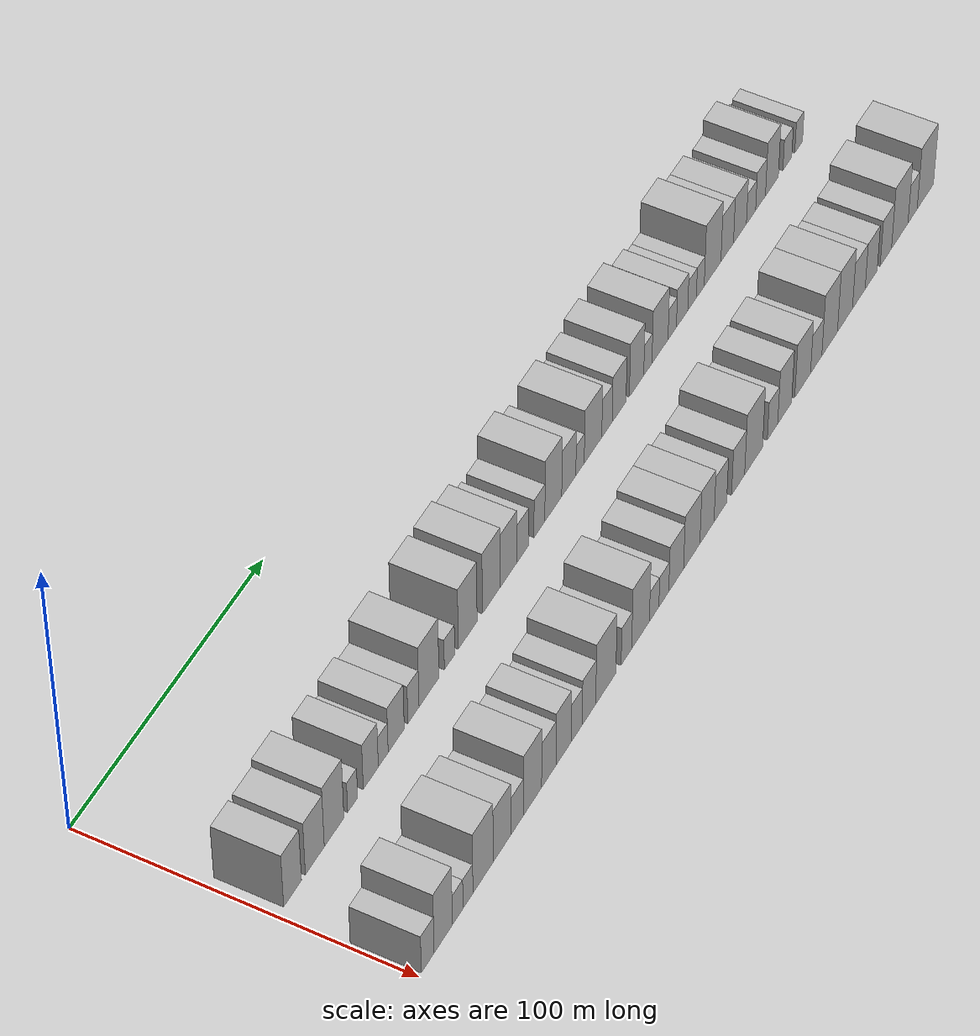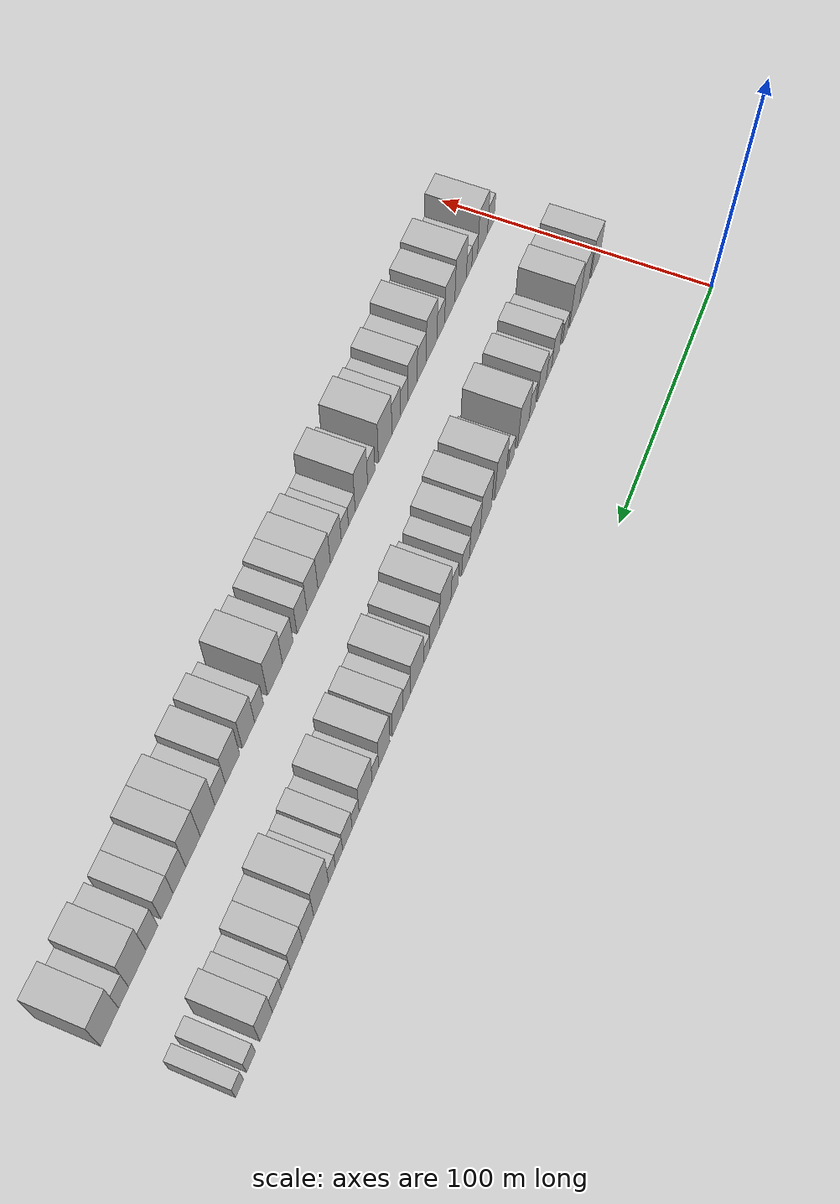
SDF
<sdf version="1.6">
 <world name="default">
  <model name="building_37">
   <static>1</static>
   <pose>50.0000 7.9456 0 0.000000 0.000000 0.000000</pose>
   <link name="link">
    <pose>0 0 10.50 0 0 0</pose>
    <collision name="collision"><geometry><box><size>20.0000 9.1939 21.0000</size></box></geometry></collision>
    <visual name="visual">
     <cast_shadows>0</cast_shadows>
     <geometry><box><size>20.0000 9.1939 21.0000</size></box></geometry>
     <material>
      <script>
       <uri>model://HANNAS_wall/materials/scripts</uri>
       <uri>model://HANNAS_wall/materials/textures</uri>
       <name>vrc/HANNAS_wall</name>
      </script>
     </material>
    </visual>
   </link>
  </model>
  <model name="building_38">
   <static>1</static>
   <pose>50.0000 19.4693 0 0.000000 0.000000 0.000000</pose>
   <link name="link">
    <pose>0 0 10.50 0 0 0</pose>
    <collision name="collision"><geometry><box><size>20.0000 9.8533 21.0000</size></box></geometry></collision>
    <visual name="visual">
     <cast_shadows>0</cast_shadows>
     <geometry><box><size>20.0000 9.8533 21.0000</size></box></geometry>
     <material>
      <script>
       <uri>model://HANNAS_wall/materials/scripts</uri>
       <uri>model://HANNAS_wall/materials/textures</uri>
       <name>vrc/HANNAS_wall</name>
      </script>
     </material>
    </visual>
   </link>
  </model>
  <model name="building_39">
   <static>1</static>
   <pose>50.0000 29.5468 0 0.000000 0.000000 0.000000</pose>
   <link name="link">
    <pose>0 0 12.00 0 0 0</pose>
    <collision name="collision"><geometry><box><size>20.0000 10.3018 24.0000</size></box></geometry></collision>
    <visual name="visual">
     <cast_shadows>0</cast_shadows>
     <geometry><box><size>20.0000 10.3018 24.0000</size></box></geometry>
     <material>
      <script>
       <uri>model://HANNAS_wall/materials/scripts</uri>
       <uri>model://HANNAS_wall/materials/textures</uri>
       <name>vrc/HANNAS_wall</name>
      </script>
     </material>
    </visual>
   </link>
  </model>
  <model name="building_40">
   <static>1</static>
   <pose>50.0000 39.3319 0 0.000000 0.000000 0.000000</pose>
   <link name="link">
    <pose>0 0 6.00 0 0 0</pose>
    <collision name="collision"><geometry><box><size>20.0000 5.2682 12.0000</size></box></geometry></collision>
    <visual name="visual">
     <cast_shadows>0</cast_shadows>
     <geometry><box><size>20.0000 5.2682 12.0000</size></box></geometry>
     <material>
      <script>
       <uri>model://HANNAS_wall/materials/scripts</uri>
       <uri>model://HANNAS_wall/materials/textures</uri>
       <name>vrc/HANNAS_wall</name>
      </script>
     </material>
    </visual>
   </link>
  </model>
  <model name="building_41">
   <static>1</static>
   <pose>50.0000 48.9914 0 0.000000 0.000000 0.000000</pose>
   <link name="link">
    <pose>0 0 9.00 0 0 0</pose>
    <collision name="collision"><geometry><box><size>20.0000 8.0509 18.0000</size></box></geometry></collision>
    <visual name="visual">
     <cast_shadows>0</cast_shadows>
     <geometry><box><size>20.0000 8.0509 18.0000</size></box></geometry>
     <material>
      <script>
       <uri>model://HANNAS_wall/materials/scripts</uri>
       <uri>model://HANNAS_wall/materials/textures</uri>
       <name>vrc/HANNAS_wall</name>
      </script>
     </material>
    </visual>
   </link>
  </model>
  <model name="building_42">
   <static>1</static>
   <pose>50.0000 55.6602 0 0.000000 0.000000 0.000000</pose>
   <link name="link">
    <pose>0 0 6.00 0 0 0</pose>
    <collision name="collision"><geometry><box><size>20.0000 5.2866 12.0000</size></box></geometry></collision>
    <visual name="visual">
     <cast_shadows>0</cast_shadows>
     <geometry><box><size>20.0000 5.2866 12.0000</size></box></geometry>
     <material>
      <script>
       <uri>model://HANNAS_wall/materials/scripts</uri>
       <uri>model://HANNAS_wall/materials/textures</uri>
       <name>vrc/HANNAS_wall</name>
      </script>
     </material>
    </visual>
   </link>
  </model>
  <model name="building_43">
   <static>1</static>
   <pose>50.0000 62.6468 0 0.000000 0.000000 0.000000</pose>
   <link name="link">
    <pose>0 0 9.00 0 0 0</pose>
    <collision name="collision"><geometry><box><size>20.0000 8.6865 18.0000</size></box></geometry></collision>
    <visual name="visual">
     <cast_shadows>0</cast_shadows>
     <geometry><box><size>20.0000 8.6865 18.0000</size></box></geometry>
     <material>
      <script>
       <uri>model://HANNAS_wall/materials/scripts</uri>
       <uri>model://HANNAS_wall/materials/textures</uri>
       <name>vrc/HANNAS_wall</name>
      </script>
     </material>
    </visual>
   </link>
  </model>
  <model name="building_44">
   <static>1</static>
   <pose>50.0000 72.0212 0 0.000000 0.000000 0.000000</pose>
   <link name="link">
    <pose>0 0 7.50 0 0 0</pose>
    <collision name="collision"><geometry><box><size>20.0000 6.0623 15.0000</size></box></geometry></collision>
    <visual name="visual">
     <cast_shadows>0</cast_shadows>
     <geometry><box><size>20.0000 6.0623 15.0000</size></box></geometry>
     <material>
      <script>
       <uri>model://HANNAS_wall/materials/scripts</uri>
       <uri>model://HANNAS_wall/materials/textures</uri>
       <name>vrc/HANNAS_wall</name>
      </script>
     </material>
    </visual>
   </link>
  </model>
  <model name="building_45">
   <static>1</static>
   <pose>50.0000 80.5206 0 0.000000 0.000000 0.000000</pose>
   <link name="link">
    <pose>0 0 12.00 0 0 0</pose>
    <collision name="collision"><geometry><box><size>20.0000 10.9365 24.0000</size></box></geometry></collision>
    <visual name="visual">
     <cast_shadows>0</cast_shadows>
     <geometry><box><size>20.0000 10.9365 24.0000</size></box></geometry>
     <material>
      <script>
       <uri>model://HANNAS_wall/materials/scripts</uri>
       <uri>model://HANNAS_wall/materials/textures</uri>
       <name>vrc/HANNAS_wall</name>
      </script>
     </material>
    </visual>
   </link>
  </model>
  <model name="building_46">
   <static>1</static>
   <pose>50.0000 91.8539 0 0.000000 0.000000 0.000000</pose>
   <link name="link">
    <pose>0 0 6.00 0 0 0</pose>
    <collision name="collision"><geometry><box><size>20.0000 5.7302 12.0000</size></box></geometry></collision>
    <visual name="visual">
     <cast_shadows>0</cast_shadows>
     <geometry><box><size>20.0000 5.7302 12.0000</size></box></geometry>
     <material>
      <script>
       <uri>model://HANNAS_wall/materials/scripts</uri>
       <uri>model://HANNAS_wall/materials/textures</uri>
       <name>vrc/HANNAS_wall</name>
      </script>
     </material>
    </visual>
   </link>
  </model>
  <model name="building_47">
   <static>1</static>
   <pose>50.0000 101.9800 0 0.000000 0.000000 0.000000</pose>
   <link name="link">
    <pose>0 0 12.00 0 0 0</pose>
    <collision name="collision"><geometry><box><size>20.0000 10.5220 24.0000</size></box></geometry></collision>
    <visual name="visual">
     <cast_shadows>0</cast_shadows>
     <geometry><box><size>20.0000 10.5220 24.0000</size></box></geometry>
     <material>
      <script>
       <uri>model://HANNAS_wall/materials/scripts</uri>
       <uri>model://HANNAS_wall/materials/textures</uri>
       <name>vrc/HANNAS_wall</name>
      </script>
     </material>
    </visual>
   </link>
  </model>
  <model name="building_48">
   <static>1</static>
   <pose>50.0000 115.3014 0 0.000000 0.000000 0.000000</pose>
   <link name="link">
    <pose>0 0 12.00 0 0 0</pose>
    <collision name="collision"><geometry><box><size>20.0000 10.1207 24.0000</size></box></geometry></collision>
    <visual name="visual">
     <cast_shadows>0</cast_shadows>
     <geometry><box><size>20.0000 10.1207 24.0000</size></box></geometry>
     <material>
      <script>
       <uri>model://HANNAS_wall/materials/scripts</uri>
       <uri>model://HANNAS_wall/materials/textures</uri>
       <name>vrc/HANNAS_wall</name>
      </script>
     </material>
    </visual>
   </link>
  </model>
  <model name="building_49">
   <static>1</static>
   <pose>50.0000 125.1056 0 0.000000 0.000000 0.000000</pose>
   <link name="link">
    <pose>0 0 10.50 0 0 0</pose>
    <collision name="collision"><geometry><box><size>20.0000 9.4878 21.0000</size></box></geometry></collision>
    <visual name="visual">
     <cast_shadows>0</cast_shadows>
     <geometry><box><size>20.0000 9.4878 21.0000</size></box></geometry>
     <material>
      <script>
       <uri>model://HANNAS_wall/materials/scripts</uri>
       <uri>model://HANNAS_wall/materials/textures</uri>
       <name>vrc/HANNAS_wall</name>
      </script>
     </material>
    </visual>
   </link>
  </model>
  <model name="building_50">
   <static>1</static>
   <pose>50.0000 133.2721 0 0.000000 0.000000 0.000000</pose>
   <link name="link">
    <pose>0 0 7.50 0 0 0</pose>
    <collision name="collision"><geometry><box><size>20.0000 6.8451 15.0000</size></box></geometry></collision>
    <visual name="visual">
     <cast_shadows>0</cast_shadows>
     <geometry><box><size>20.0000 6.8451 15.0000</size></box></geometry>
     <material>
      <script>
       <uri>model://HANNAS_wall/materials/scripts</uri>
       <uri>model://HANNAS_wall/materials/textures</uri>
       <name>vrc/HANNAS_wall</name>
      </script>
     </material>
    </visual>
   </link>
  </model>
  <model name="building_51">
   <static>1</static>
   <pose>50.0000 142.8507 0 0.000000 0.000000 0.000000</pose>
   <link name="link">
    <pose>0 0 7.50 0 0 0</pose>
    <collision name="collision"><geometry><box><size>20.0000 6.3121 15.0000</size></box></geometry></collision>
    <visual name="visual">
     <cast_shadows>0</cast_shadows>
     <geometry><box><size>20.0000 6.3121 15.0000</size></box></geometry>
     <material>
      <script>
       <uri>model://HANNAS_wall/materials/scripts</uri>
       <uri>model://HANNAS_wall/materials/textures</uri>
       <name>vrc/HANNAS_wall</name>
      </script>
     </material>
    </visual>
   </link>
  </model>
  <model name="building_52">
   <static>1</static>
   <pose>50.0000 150.9185 0 0.000000 0.000000 0.000000</pose>
   <link name="link">
    <pose>0 0 12.00 0 0 0</pose>
    <collision name="collision"><geometry><box><size>20.0000 9.8236 24.0000</size></box></geometry></collision>
    <visual name="visual">
     <cast_shadows>0</cast_shadows>
     <geometry><box><size>20.0000 9.8236 24.0000</size></box></geometry>
     <material>
      <script>
       <uri>model://HANNAS_wall/materials/scripts</uri>
       <uri>model://HANNAS_wall/materials/textures</uri>
       <name>vrc/HANNAS_wall</name>
      </script>
     </material>
    </visual>
   </link>
  </model>
  <model name="building_53">
   <static>1</static>
   <pose>50.0000 159.9945 0 0.000000 0.000000 0.000000</pose>
   <link name="link">
    <pose>0 0 9.00 0 0 0</pose>
    <collision name="collision"><geometry><box><size>20.0000 8.3284 18.0000</size></box></geometry></collision>
    <visual name="visual">
     <cast_shadows>0</cast_shadows>
     <geometry><box><size>20.0000 8.3284 18.0000</size></box></geometry>
     <material>
      <script>
       <uri>model://HANNAS_wall/materials/scripts</uri>
       <uri>model://HANNAS_wall/materials/textures</uri>
       <name>vrc/HANNAS_wall</name>
      </script>
     </material>
    </visual>
   </link>
  </model>
  <model name="building_54">
   <static>1</static>
   <pose>50.0000 166.6386 0 0.000000 0.000000 0.000000</pose>
   <link name="link">
    <pose>0 0 6.00 0 0 0</pose>
    <collision name="collision"><geometry><box><size>20.0000 4.9598 12.0000</size></box></geometry></collision>
    <visual name="visual">
     <cast_shadows>0</cast_shadows>
     <geometry><box><size>20.0000 4.9598 12.0000</size></box></geometry>
     <material>
      <script>
       <uri>model://HANNAS_wall/materials/scripts</uri>
       <uri>model://HANNAS_wall/materials/textures</uri>
       <name>vrc/HANNAS_wall</name>
      </script>
     </material>
    </visual>
   </link>
  </model>
  <model name="building_55">
   <static>1</static>
   <pose>50.0000 174.3444 0 0.000000 0.000000 0.000000</pose>
   <link name="link">
    <pose>0 0 10.50 0 0 0</pose>
    <collision name="collision"><geometry><box><size>20.0000 10.4516 21.0000</size></box></geometry></collision>
    <visual name="visual">
     <cast_shadows>0</cast_shadows>
     <geometry><box><size>20.0000 10.4516 21.0000</size></box></geometry>
     <material>
      <script>
       <uri>model://HANNAS_wall/materials/scripts</uri>
       <uri>model://HANNAS_wall/materials/textures</uri>
       <name>vrc/HANNAS_wall</name>
      </script>
     </material>
    </visual>
   </link>
  </model>
  <model name="building_56">
   <static>1</static>
   <pose>50.0000 182.6839 0 0.000000 0.000000 0.000000</pose>
   <link name="link">
    <pose>0 0 7.50 0 0 0</pose>
    <collision name="collision"><geometry><box><size>20.0000 6.2274 15.0000</size></box></geometry></collision>
    <visual name="visual">
     <cast_shadows>0</cast_shadows>
     <geometry><box><size>20.0000 6.2274 15.0000</size></box></geometry>
     <material>
      <script>
       <uri>model://HANNAS_wall/materials/scripts</uri>
       <uri>model://HANNAS_wall/materials/textures</uri>
       <name>vrc/HANNAS_wall</name>
      </script>
     </material>
    </visual>
   </link>
  </model>
  <model name="building_57">
   <static>1</static>
   <pose>50.0000 189.9782 0 0.000000 0.000000 0.000000</pose>
   <link name="link">
    <pose>0 0 9.00 0 0 0</pose>
    <collision name="collision"><geometry><box><size>20.0000 8.3613 18.0000</size></box></geometry></collision>
    <visual name="visual">
     <cast_shadows>0</cast_shadows>
     <geometry><box><size>20.0000 8.3613 18.0000</size></box></geometry>
     <material>
      <script>
       <uri>model://HANNAS_wall/materials/scripts</uri>
       <uri>model://HANNAS_wall/materials/textures</uri>
       <name>vrc/HANNAS_wall</name>
      </script>
     </material>
    </visual>
   </link>
  </model>
  <model name="building_58">
   <static>1</static>
   <pose>50.0000 200.5402 0 0.000000 0.000000 0.000000</pose>
   <link name="link">
    <pose>0 0 10.50 0 0 0</pose>
    <collision name="collision"><geometry><box><size>20.0000 8.7629 21.0000</size></box></geometry></collision>
    <visual name="visual">
     <cast_shadows>0</cast_shadows>
     <geometry><box><size>20.0000 8.7629 21.0000</size></box></geometry>
     <material>
      <script>
       <uri>model://HANNAS_wall/materials/scripts</uri>
       <uri>model://HANNAS_wall/materials/textures</uri>
       <name>vrc/HANNAS_wall</name>
      </script>
     </material>
    </visual>
   </link>
  </model>
  <model name="building_59">
   <static>1</static>
   <pose>50.0000 207.4315 0 0.000000 0.000000 0.000000</pose>
   <link name="link">
    <pose>0 0 6.00 0 0 0</pose>
    <collision name="collision"><geometry><box><size>20.0000 5.0197 12.0000</size></box></geometry></collision>
    <visual name="visual">
     <cast_shadows>0</cast_shadows>
     <geometry><box><size>20.0000 5.0197 12.0000</size></box></geometry>
     <material>
      <script>
       <uri>model://HANNAS_wall/materials/scripts</uri>
       <uri>model://HANNAS_wall/materials/textures</uri>
       <name>vrc/HANNAS_wall</name>
      </script>
     </material>
    </visual>
   </link>
  </model>
  <model name="building_60">
   <static>1</static>
   <pose>50.0000 214.8930 0 0.000000 0.000000 0.000000</pose>
   <link name="link">
    <pose>0 0 10.50 0 0 0</pose>
    <collision name="collision"><geometry><box><size>20.0000 9.9031 21.0000</size></box></geometry></collision>
    <visual name="visual">
     <cast_shadows>0</cast_shadows>
     <geometry><box><size>20.0000 9.9031 21.0000</size></box></geometry>
     <material>
      <script>
       <uri>model://HANNAS_wall/materials/scripts</uri>
       <uri>model://HANNAS_wall/materials/textures</uri>
       <name>vrc/HANNAS_wall</name>
      </script>
     </material>
    </visual>
   </link>
  </model>
  <model name="building_61">
   <static>1</static>
   <pose>50.0000 222.4428 0 0.000000 0.000000 0.000000</pose>
   <link name="link">
    <pose>0 0 6.00 0 0 0</pose>
    <collision name="collision"><geometry><box><size>20.0000 5.1965 12.0000</size></box></geometry></collision>
    <visual name="visual">
     <cast_shadows>0</cast_shadows>
     <geometry><box><size>20.0000 5.1965 12.0000</size></box></geometry>
     <material>
      <script>
       <uri>model://HANNAS_wall/materials/scripts</uri>
       <uri>model://HANNAS_wall/materials/textures</uri>
       <name>vrc/HANNAS_wall</name>
      </script>
     </material>
    </visual>
   </link>
  </model>
  <model name="building_62">
   <static>1</static>
   <pose>50.0000 228.5811 0 0.000000 0.000000 0.000000</pose>
   <link name="link">
    <pose>0 0 7.50 0 0 0</pose>
    <collision name="collision"><geometry><box><size>20.0000 7.0801 15.0000</size></box></geometry></collision>
    <visual name="visual">
     <cast_shadows>0</cast_shadows>
     <geometry><box><size>20.0000 7.0801 15.0000</size></box></geometry>
     <material>
      <script>
       <uri>model://HANNAS_wall/materials/scripts</uri>
       <uri>model://HANNAS_wall/materials/textures</uri>
       <name>vrc/HANNAS_wall</name>
      </script>
     </material>
    </visual>
   </link>
  </model>
  <model name="building_63">
   <static>1</static>
   <pose>50.0000 234.8005 0 0.000000 0.000000 0.000000</pose>
   <link name="link">
    <pose>0 0 6.00 0 0 0</pose>
    <collision name="collision"><geometry><box><size>20.0000 5.3588 12.0000</size></box></geometry></collision>
    <visual name="visual">
     <cast_shadows>0</cast_shadows>
     <geometry><box><size>20.0000 5.3588 12.0000</size></box></geometry>
     <material>
      <script>
       <uri>model://HANNAS_wall/materials/scripts</uri>
       <uri>model://HANNAS_wall/materials/textures</uri>
       <name>vrc/HANNAS_wall</name>
      </script>
     </material>
    </visual>
   </link>
  </model>
  <model name="building_64">
   <static>1</static>
   <pose>50.0000 239.9629 0 0.000000 0.000000 0.000000</pose>
   <link name="link">
    <pose>0 0 6.00 0 0 0</pose>
    <collision name="collision"><geometry><box><size>20.0000 4.9660 12.0000</size></box></geometry></collision>
    <visual name="visual">
     <cast_shadows>0</cast_shadows>
     <geometry><box><size>20.0000 4.9660 12.0000</size></box></geometry>
     <material>
      <script>
       <uri>model://HANNAS_wall/materials/scripts</uri>
       <uri>model://HANNAS_wall/materials/textures</uri>
       <name>vrc/HANNAS_wall</name>
      </script>
     </material>
    </visual>
   </link>
  </model>
  <model name="building_65">
   <static>1</static>
   <pose>50.0000 247.7345 0 0.000000 0.000000 0.000000</pose>
   <link name="link">
    <pose>0 0 12.00 0 0 0</pose>
    <collision name="collision"><geometry><box><size>20.0000 10.5771 24.0000</size></box></geometry></collision>
    <visual name="visual">
     <cast_shadows>0</cast_shadows>
     <geometry><box><size>20.0000 10.5771 24.0000</size></box></geometry>
     <material>
      <script>
       <uri>model://HANNAS_wall/materials/scripts</uri>
       <uri>model://HANNAS_wall/materials/textures</uri>
       <name>vrc/HANNAS_wall</name>
      </script>
     </material>
    </visual>
   </link>
  </model>
  <model name="building_66">
   <static>1</static>
   <pose>50.0000 257.0265 0 0.000000 0.000000 0.000000</pose>
   <link name="link">
    <pose>0 0 9.00 0 0 0</pose>
    <collision name="collision"><geometry><box><size>20.0000 8.0067 18.0000</size></box></geometry></collision>
    <visual name="visual">
     <cast_shadows>0</cast_shadows>
     <geometry><box><size>20.0000 8.0067 18.0000</size></box></geometry>
     <material>
      <script>
       <uri>model://HANNAS_wall/materials/scripts</uri>
       <uri>model://HANNAS_wall/materials/textures</uri>
       <name>vrc/HANNAS_wall</name>
      </script>
     </material>
    </visual>
   </link>
  </model>
  <model name="building_67">
   <static>1</static>
   <pose>50.0000 265.1868 0 0.000000 0.000000 0.000000</pose>
   <link name="link">
    <pose>0 0 9.00 0 0 0</pose>
    <collision name="collision"><geometry><box><size>20.0000 8.3139 18.0000</size></box></geometry></collision>
    <visual name="visual">
     <cast_shadows>0</cast_shadows>
     <geometry><box><size>20.0000 8.3139 18.0000</size></box></geometry>
     <material>
      <script>
       <uri>model://HANNAS_wall/materials/scripts</uri>
       <uri>model://HANNAS_wall/materials/textures</uri>
       <name>vrc/HANNAS_wall</name>
      </script>
     </material>
    </visual>
   </link>
  </model>
  <model name="building_68">
   <static>1</static>
   <pose>50.0000 272.3159 0 0.000000 0.000000 0.000000</pose>
   <link name="link">
    <pose>0 0 6.00 0 0 0</pose>
    <collision name="collision"><geometry><box><size>20.0000 5.9443 12.0000</size></box></geometry></collision>
    <visual name="visual">
     <cast_shadows>0</cast_shadows>
     <geometry><box><size>20.0000 5.9443 12.0000</size></box></geometry>
     <material>
      <script>
       <uri>model://HANNAS_wall/materials/scripts</uri>
       <uri>model://HANNAS_wall/materials/textures</uri>
       <name>vrc/HANNAS_wall</name>
      </script>
     </material>
    </visual>
   </link>
  </model>
  <model name="building_69">
   <static>1</static>
   <pose>50.0000 278.4816 0 0.000000 0.000000 0.000000</pose>
   <link name="link">
    <pose>0 0 7.50 0 0 0</pose>
    <collision name="collision"><geometry><box><size>20.0000 6.3872 15.0000</size></box></geometry></collision>
    <visual name="visual">
     <cast_shadows>0</cast_shadows>
     <geometry><box><size>20.0000 6.3872 15.0000</size></box></geometry>
     <material>
      <script>
       <uri>model://HANNAS_wall/materials/scripts</uri>
       <uri>model://HANNAS_wall/materials/textures</uri>
       <name>vrc/HANNAS_wall</name>
      </script>
     </material>
    </visual>
   </link>
  </model>
  <model name="building_70">
   <static>1</static>
   <pose>50.0000 285.8795 0 0.000000 0.000000 0.000000</pose>
   <link name="link">
    <pose>0 0 10.50 0 0 0</pose>
    <collision name="collision"><geometry><box><size>20.0000 8.4086 21.0000</size></box></geometry></collision>
    <visual name="visual">
     <cast_shadows>0</cast_shadows>
     <geometry><box><size>20.0000 8.4086 21.0000</size></box></geometry>
     <material>
      <script>
       <uri>model://HANNAS_wall/materials/scripts</uri>
       <uri>model://HANNAS_wall/materials/textures</uri>
       <name>vrc/HANNAS_wall</name>
      </script>
     </material>
    </visual>
   </link>
  </model>
  <model name="building_71">
   <static>1</static>
   <pose>50.0000 296.0022 0 0.000000 0.000000 0.000000</pose>
   <link name="link">
    <pose>0 0 6.00 0 0 0</pose>
    <collision name="collision"><geometry><box><size>20.0000 5.8367 12.0000</size></box></geometry></collision>
    <visual name="visual">
     <cast_shadows>0</cast_shadows>
     <geometry><box><size>20.0000 5.8367 12.0000</size></box></geometry>
     <material>
      <script>
       <uri>model://HANNAS_wall/materials/scripts</uri>
       <uri>model://HANNAS_wall/materials/textures</uri>
       <name>vrc/HANNAS_wall</name>
      </script>
     </material>
    </visual>
   </link>
  </model>
  <model name="building_72">
   <static>1</static>
   <pose>50.0000 303.4666 0 0.000000 0.000000 0.000000</pose>
   <link name="link">
    <pose>0 0 6.00 0 0 0</pose>
    <collision name="collision"><geometry><box><size>20.0000 5.0923 12.0000</size></box></geometry></collision>
    <visual name="visual">
     <cast_shadows>0</cast_shadows>
     <geometry><box><size>20.0000 5.0923 12.0000</size></box></geometry>
     <material>
      <script>
       <uri>model://HANNAS_wall/materials/scripts</uri>
       <uri>model://HANNAS_wall/materials/textures</uri>
       <name>vrc/HANNAS_wall</name>
      </script>
     </material>
    </visual>
   </link>
  </model>
  <model name="building_107">
   <static>1</static>
   <pose>90.0000 4.6792 0 0.000000 0.000000 0.000000</pose>
   <link name="link">
    <pose>0 0 7.50 0 0 0</pose>
    <collision name="collision"><geometry><box><size>20.0000 6.7157 15.0000</size></box></geometry></collision>
    <visual name="visual">
     <cast_shadows>0</cast_shadows>
     <geometry><box><size>20.0000 6.7157 15.0000</size></box></geometry>
     <material>
      <script>
       <uri>model://HANNAS_wall/materials/scripts</uri>
       <uri>model://HANNAS_wall/materials/textures</uri>
       <name>vrc/HANNAS_wall</name>
      </script>
     </material>
    </visual>
   </link>
  </model>
  <model name="building_108">
   <static>1</static>
   <pose>90.0000 12.8679 0 0.000000 0.000000 0.000000</pose>
   <link name="link">
    <pose>0 0 12.00 0 0 0</pose>
    <collision name="collision"><geometry><box><size>20.0000 9.6616 24.0000</size></box></geometry></collision>
    <visual name="visual">
     <cast_shadows>0</cast_shadows>
     <geometry><box><size>20.0000 9.6616 24.0000</size></box></geometry>
     <material>
      <script>
       <uri>model://HANNAS_wall/materials/scripts</uri>
       <uri>model://HANNAS_wall/materials/textures</uri>
       <name>vrc/HANNAS_wall</name>
      </script>
     </material>
    </visual>
   </link>
  </model>
  <model name="building_109">
   <static>1</static>
   <pose>90.0000 20.5508 0 0.000000 0.000000 0.000000</pose>
   <link name="link">
    <pose>0 0 6.00 0 0 0</pose>
    <collision name="collision"><geometry><box><size>20.0000 5.7042 12.0000</size></box></geometry></collision>
    <visual name="visual">
     <cast_shadows>0</cast_shadows>
     <geometry><box><size>20.0000 5.7042 12.0000</size></box></geometry>
     <material>
      <script>
       <uri>model://HANNAS_wall/materials/scripts</uri>
       <uri>model://HANNAS_wall/materials/textures</uri>
       <name>vrc/HANNAS_wall</name>
      </script>
     </material>
    </visual>
   </link>
  </model>
  <model name="building_110">
   <static>1</static>
   <pose>90.0000 26.0632 0 0.000000 0.000000 0.000000</pose>
   <link name="link">
    <pose>0 0 6.00 0 0 0</pose>
    <collision name="collision"><geometry><box><size>20.0000 5.3204 12.0000</size></box></geometry></collision>
    <visual name="visual">
     <cast_shadows>0</cast_shadows>
     <geometry><box><size>20.0000 5.3204 12.0000</size></box></geometry>
     <material>
      <script>
       <uri>model://HANNAS_wall/materials/scripts</uri>
       <uri>model://HANNAS_wall/materials/textures</uri>
       <name>vrc/HANNAS_wall</name>
      </script>
     </material>
    </visual>
   </link>
  </model>
  <model name="building_111">
   <static>1</static>
   <pose>90.0000 34.2066 0 0.000000 0.000000 0.000000</pose>
   <link name="link">
    <pose>0 0 12.00 0 0 0</pose>
    <collision name="collision"><geometry><box><size>20.0000 10.9665 24.0000</size></box></geometry></collision>
    <visual name="visual">
     <cast_shadows>0</cast_shadows>
     <geometry><box><size>20.0000 10.9665 24.0000</size></box></geometry>
     <material>
      <script>
       <uri>model://HANNAS_wall/materials/scripts</uri>
       <uri>model://HANNAS_wall/materials/textures</uri>
       <name>vrc/HANNAS_wall</name>
      </script>
     </material>
    </visual>
   </link>
  </model>
  <model name="building_112">
   <static>1</static>
   <pose>90.0000 44.4616 0 0.000000 0.000000 0.000000</pose>
   <link name="link">
    <pose>0 0 10.50 0 0 0</pose>
    <collision name="collision"><geometry><box><size>20.0000 9.5434 21.0000</size></box></geometry></collision>
    <visual name="visual">
     <cast_shadows>0</cast_shadows>
     <geometry><box><size>20.0000 9.5434 21.0000</size></box></geometry>
     <material>
      <script>
       <uri>model://HANNAS_wall/materials/scripts</uri>
       <uri>model://HANNAS_wall/materials/textures</uri>
       <name>vrc/HANNAS_wall</name>
      </script>
     </material>
    </visual>
   </link>
  </model>
  <model name="building_113">
   <static>1</static>
   <pose>90.0000 52.7765 0 0.000000 0.000000 0.000000</pose>
   <link name="link">
    <pose>0 0 7.50 0 0 0</pose>
    <collision name="collision"><geometry><box><size>20.0000 7.0864 15.0000</size></box></geometry></collision>
    <visual name="visual">
     <cast_shadows>0</cast_shadows>
     <geometry><box><size>20.0000 7.0864 15.0000</size></box></geometry>
     <material>
      <script>
       <uri>model://HANNAS_wall/materials/scripts</uri>
       <uri>model://HANNAS_wall/materials/textures</uri>
       <name>vrc/HANNAS_wall</name>
      </script>
     </material>
    </visual>
   </link>
  </model>
  <model name="building_114">
   <static>1</static>
   <pose>90.0000 61.2778 0 0.000000 0.000000 0.000000</pose>
   <link name="link">
    <pose>0 0 12.00 0 0 0</pose>
    <collision name="collision"><geometry><box><size>20.0000 9.9162 24.0000</size></box></geometry></collision>
    <visual name="visual">
     <cast_shadows>0</cast_shadows>
     <geometry><box><size>20.0000 9.9162 24.0000</size></box></geometry>
     <material>
      <script>
       <uri>model://HANNAS_wall/materials/scripts</uri>
       <uri>model://HANNAS_wall/materials/textures</uri>
       <name>vrc/HANNAS_wall</name>
      </script>
     </material>
    </visual>
   </link>
  </model>
  <model name="building_115">
   <static>1</static>
   <pose>90.0000 70.2592 0 0.000000 0.000000 0.000000</pose>
   <link name="link">
    <pose>0 0 9.00 0 0 0</pose>
    <collision name="collision"><geometry><box><size>20.0000 8.0465 18.0000</size></box></geometry></collision>
    <visual name="visual">
     <cast_shadows>0</cast_shadows>
     <geometry><box><size>20.0000 8.0465 18.0000</size></box></geometry>
     <material>
      <script>
       <uri>model://HANNAS_wall/materials/scripts</uri>
       <uri>model://HANNAS_wall/materials/textures</uri>
       <name>vrc/HANNAS_wall</name>
      </script>
     </material>
    </visual>
   </link>
  </model>
  <model name="building_116">
   <static>1</static>
   <pose>90.0000 78.5116 0 0.000000 0.000000 0.000000</pose>
   <link name="link">
    <pose>0 0 10.50 0 0 0</pose>
    <collision name="collision"><geometry><box><size>20.0000 8.4583 21.0000</size></box></geometry></collision>
    <visual name="visual">
     <cast_shadows>0</cast_shadows>
     <geometry><box><size>20.0000 8.4583 21.0000</size></box></geometry>
     <material>
      <script>
       <uri>model://HANNAS_wall/materials/scripts</uri>
       <uri>model://HANNAS_wall/materials/textures</uri>
       <name>vrc/HANNAS_wall</name>
      </script>
     </material>
    </visual>
   </link>
  </model>
  <model name="building_117">
   <static>1</static>
   <pose>90.0000 85.9025 0 0.000000 0.000000 0.000000</pose>
   <link name="link">
    <pose>0 0 7.50 0 0 0</pose>
    <collision name="collision"><geometry><box><size>20.0000 6.3236 15.0000</size></box></geometry></collision>
    <visual name="visual">
     <cast_shadows>0</cast_shadows>
     <geometry><box><size>20.0000 6.3236 15.0000</size></box></geometry>
     <material>
      <script>
       <uri>model://HANNAS_wall/materials/scripts</uri>
       <uri>model://HANNAS_wall/materials/textures</uri>
       <name>vrc/HANNAS_wall</name>
      </script>
     </material>
    </visual>
   </link>
  </model>
  <model name="building_118">
   <static>1</static>
   <pose>90.0000 92.9054 0 0.000000 0.000000 0.000000</pose>
   <link name="link">
    <pose>0 0 9.00 0 0 0</pose>
    <collision name="collision"><geometry><box><size>20.0000 7.6822 18.0000</size></box></geometry></collision>
    <visual name="visual">
     <cast_shadows>0</cast_shadows>
     <geometry><box><size>20.0000 7.6822 18.0000</size></box></geometry>
     <material>
      <script>
       <uri>model://HANNAS_wall/materials/scripts</uri>
       <uri>model://HANNAS_wall/materials/textures</uri>
       <name>vrc/HANNAS_wall</name>
      </script>
     </material>
    </visual>
   </link>
  </model>
  <model name="building_119">
   <static>1</static>
   <pose>90.0000 102.5439 0 0.000000 0.000000 0.000000</pose>
   <link name="link">
    <pose>0 0 12.00 0 0 0</pose>
    <collision name="collision"><geometry><box><size>20.0000 11.5948 24.0000</size></box></geometry></collision>
    <visual name="visual">
     <cast_shadows>0</cast_shadows>
     <geometry><box><size>20.0000 11.5948 24.0000</size></box></geometry>
     <material>
      <script>
       <uri>model://HANNAS_wall/materials/scripts</uri>
       <uri>model://HANNAS_wall/materials/textures</uri>
       <name>vrc/HANNAS_wall</name>
      </script>
     </material>
    </visual>
   </link>
  </model>
  <model name="building_120">
   <static>1</static>
   <pose>90.0000 114.3942 0 0.000000 0.000000 0.000000</pose>
   <link name="link">
    <pose>0 0 7.50 0 0 0</pose>
    <collision name="collision"><geometry><box><size>20.0000 6.1057 15.0000</size></box></geometry></collision>
    <visual name="visual">
     <cast_shadows>0</cast_shadows>
     <geometry><box><size>20.0000 6.1057 15.0000</size></box></geometry>
     <material>
      <script>
       <uri>model://HANNAS_wall/materials/scripts</uri>
       <uri>model://HANNAS_wall/materials/textures</uri>
       <name>vrc/HANNAS_wall</name>
      </script>
     </material>
    </visual>
   </link>
  </model>
  <model name="building_121">
   <static>1</static>
   <pose>90.0000 122.6203 0 0.000000 0.000000 0.000000</pose>
   <link name="link">
    <pose>0 0 12.00 0 0 0</pose>
    <collision name="collision"><geometry><box><size>20.0000 10.3466 24.0000</size></box></geometry></collision>
    <visual name="visual">
     <cast_shadows>0</cast_shadows>
     <geometry><box><size>20.0000 10.3466 24.0000</size></box></geometry>
     <material>
      <script>
       <uri>model://HANNAS_wall/materials/scripts</uri>
       <uri>model://HANNAS_wall/materials/textures</uri>
       <name>vrc/HANNAS_wall</name>
      </script>
     </material>
    </visual>
   </link>
  </model>
  <model name="building_122">
   <static>1</static>
   <pose>90.0000 130.6009 0 0.000000 0.000000 0.000000</pose>
   <link name="link">
    <pose>0 0 6.00 0 0 0</pose>
    <collision name="collision"><geometry><box><size>20.0000 5.6145 12.0000</size></box></geometry></collision>
    <visual name="visual">
     <cast_shadows>0</cast_shadows>
     <geometry><box><size>20.0000 5.6145 12.0000</size></box></geometry>
     <material>
      <script>
       <uri>model://HANNAS_wall/materials/scripts</uri>
       <uri>model://HANNAS_wall/materials/textures</uri>
       <name>vrc/HANNAS_wall</name>
      </script>
     </material>
    </visual>
   </link>
  </model>
  <model name="building_123">
   <static>1</static>
   <pose>90.0000 136.3204 0 0.000000 0.000000 0.000000</pose>
   <link name="link">
    <pose>0 0 6.00 0 0 0</pose>
    <collision name="collision"><geometry><box><size>20.0000 5.8246 12.0000</size></box></geometry></collision>
    <visual name="visual">
     <cast_shadows>0</cast_shadows>
     <geometry><box><size>20.0000 5.8246 12.0000</size></box></geometry>
     <material>
      <script>
       <uri>model://HANNAS_wall/materials/scripts</uri>
       <uri>model://HANNAS_wall/materials/textures</uri>
       <name>vrc/HANNAS_wall</name>
      </script>
     </material>
    </visual>
   </link>
  </model>
  <model name="building_124">
   <static>1</static>
   <pose>90.0000 143.6372 0 0.000000 0.000000 0.000000</pose>
   <link name="link">
    <pose>0 0 9.00 0 0 0</pose>
    <collision name="collision"><geometry><box><size>20.0000 8.8089 18.0000</size></box></geometry></collision>
    <visual name="visual">
     <cast_shadows>0</cast_shadows>
     <geometry><box><size>20.0000 8.8089 18.0000</size></box></geometry>
     <material>
      <script>
       <uri>model://HANNAS_wall/materials/scripts</uri>
       <uri>model://HANNAS_wall/materials/textures</uri>
       <name>vrc/HANNAS_wall</name>
      </script>
     </material>
    </visual>
   </link>
  </model>
  <model name="building_125">
   <static>1</static>
   <pose>90.0000 152.9353 0 0.000000 0.000000 0.000000</pose>
   <link name="link">
    <pose>0 0 10.50 0 0 0</pose>
    <collision name="collision"><geometry><box><size>20.0000 9.7874 21.0000</size></box></geometry></collision>
    <visual name="visual">
     <cast_shadows>0</cast_shadows>
     <geometry><box><size>20.0000 9.7874 21.0000</size></box></geometry>
     <material>
      <script>
       <uri>model://HANNAS_wall/materials/scripts</uri>
       <uri>model://HANNAS_wall/materials/textures</uri>
       <name>vrc/HANNAS_wall</name>
      </script>
     </material>
    </visual>
   </link>
  </model>
  <model name="building_126">
   <static>1</static>
   <pose>90.0000 162.1043 0 0.000000 0.000000 0.000000</pose>
   <link name="link">
    <pose>0 0 10.50 0 0 0</pose>
    <collision name="collision"><geometry><box><size>20.0000 8.5504 21.0000</size></box></geometry></collision>
    <visual name="visual">
     <cast_shadows>0</cast_shadows>
     <geometry><box><size>20.0000 8.5504 21.0000</size></box></geometry>
     <material>
      <script>
       <uri>model://HANNAS_wall/materials/scripts</uri>
       <uri>model://HANNAS_wall/materials/textures</uri>
       <name>vrc/HANNAS_wall</name>
      </script>
     </material>
    </visual>
   </link>
  </model>
  <model name="building_127">
   <static>1</static>
   <pose>90.0000 170.2327 0 0.000000 0.000000 0.000000</pose>
   <link name="link">
    <pose>0 0 9.00 0 0 0</pose>
    <collision name="collision"><geometry><box><size>20.0000 7.7064 18.0000</size></box></geometry></collision>
    <visual name="visual">
     <cast_shadows>0</cast_shadows>
     <geometry><box><size>20.0000 7.7064 18.0000</size></box></geometry>
     <material>
      <script>
       <uri>model://HANNAS_wall/materials/scripts</uri>
       <uri>model://HANNAS_wall/materials/textures</uri>
       <name>vrc/HANNAS_wall</name>
      </script>
     </material>
    </visual>
   </link>
  </model>
  <model name="building_128">
   <static>1</static>
   <pose>90.0000 181.0953 0 0.000000 0.000000 0.000000</pose>
   <link name="link">
    <pose>0 0 9.00 0 0 0</pose>
    <collision name="collision"><geometry><box><size>20.0000 8.0189 18.0000</size></box></geometry></collision>
    <visual name="visual">
     <cast_shadows>0</cast_shadows>
     <geometry><box><size>20.0000 8.0189 18.0000</size></box></geometry>
     <material>
      <script>
       <uri>model://HANNAS_wall/materials/scripts</uri>
       <uri>model://HANNAS_wall/materials/textures</uri>
       <name>vrc/HANNAS_wall</name>
      </script>
     </material>
    </visual>
   </link>
  </model>
  <model name="building_129">
   <static>1</static>
   <pose>90.0000 190.6514 0 0.000000 0.000000 0.000000</pose>
   <link name="link">
    <pose>0 0 12.00 0 0 0</pose>
    <collision name="collision"><geometry><box><size>20.0000 11.0934 24.0000</size></box></geometry></collision>
    <visual name="visual">
     <cast_shadows>0</cast_shadows>
     <geometry><box><size>20.0000 11.0934 24.0000</size></box></geometry>
     <material>
      <script>
       <uri>model://HANNAS_wall/materials/scripts</uri>
       <uri>model://HANNAS_wall/materials/textures</uri>
       <name>vrc/HANNAS_wall</name>
      </script>
     </material>
    </visual>
   </link>
  </model>
  <model name="building_130">
   <static>1</static>
   <pose>90.0000 202.4271 0 0.000000 0.000000 0.000000</pose>
   <link name="link">
    <pose>0 0 7.50 0 0 0</pose>
    <collision name="collision"><geometry><box><size>20.0000 6.4581 15.0000</size></box></geometry></collision>
    <visual name="visual">
     <cast_shadows>0</cast_shadows>
     <geometry><box><size>20.0000 6.4581 15.0000</size></box></geometry>
     <material>
      <script>
       <uri>model://HANNAS_wall/materials/scripts</uri>
       <uri>model://HANNAS_wall/materials/textures</uri>
       <name>vrc/HANNAS_wall</name>
      </script>
     </material>
    </visual>
   </link>
  </model>
  <model name="building_131">
   <static>1</static>
   <pose>90.0000 210.0474 0 0.000000 0.000000 0.000000</pose>
   <link name="link">
    <pose>0 0 10.50 0 0 0</pose>
    <collision name="collision"><geometry><box><size>20.0000 8.7825 21.0000</size></box></geometry></collision>
    <visual name="visual">
     <cast_shadows>0</cast_shadows>
     <geometry><box><size>20.0000 8.7825 21.0000</size></box></geometry>
     <material>
      <script>
       <uri>model://HANNAS_wall/materials/scripts</uri>
       <uri>model://HANNAS_wall/materials/textures</uri>
       <name>vrc/HANNAS_wall</name>
      </script>
     </material>
    </visual>
   </link>
  </model>
  <model name="building_132">
   <static>1</static>
   <pose>90.0000 221.4480 0 0.000000 0.000000 0.000000</pose>
   <link name="link">
    <pose>0 0 10.50 0 0 0</pose>
    <collision name="collision"><geometry><box><size>20.0000 10.0185 21.0000</size></box></geometry></collision>
    <visual name="visual">
     <cast_shadows>0</cast_shadows>
     <geometry><box><size>20.0000 10.0185 21.0000</size></box></geometry>
     <material>
      <script>
       <uri>model://HANNAS_wall/materials/scripts</uri>
       <uri>model://HANNAS_wall/materials/textures</uri>
       <name>vrc/HANNAS_wall</name>
      </script>
     </material>
    </visual>
   </link>
  </model>
  <model name="building_133">
   <static>1</static>
   <pose>90.0000 230.0740 0 0.000000 0.000000 0.000000</pose>
   <link name="link">
    <pose>0 0 7.50 0 0 0</pose>
    <collision name="collision"><geometry><box><size>20.0000 7.2335 15.0000</size></box></geometry></collision>
    <visual name="visual">
     <cast_shadows>0</cast_shadows>
     <geometry><box><size>20.0000 7.2335 15.0000</size></box></geometry>
     <material>
      <script>
       <uri>model://HANNAS_wall/materials/scripts</uri>
       <uri>model://HANNAS_wall/materials/textures</uri>
       <name>vrc/HANNAS_wall</name>
      </script>
     </material>
    </visual>
   </link>
  </model>
  <model name="building_134">
   <static>1</static>
   <pose>90.0000 238.7240 0 0.000000 0.000000 0.000000</pose>
   <link name="link">
    <pose>0 0 12.00 0 0 0</pose>
    <collision name="collision"><geometry><box><size>20.0000 10.0665 24.0000</size></box></geometry></collision>
    <visual name="visual">
     <cast_shadows>0</cast_shadows>
     <geometry><box><size>20.0000 10.0665 24.0000</size></box></geometry>
     <material>
      <script>
       <uri>model://HANNAS_wall/materials/scripts</uri>
       <uri>model://HANNAS_wall/materials/textures</uri>
       <name>vrc/HANNAS_wall</name>
      </script>
     </material>
    </visual>
   </link>
  </model>
  <model name="building_135">
   <static>1</static>
   <pose>90.0000 248.6446 0 0.000000 0.000000 0.000000</pose>
   <link name="link">
    <pose>0 0 12.00 0 0 0</pose>
    <collision name="collision"><geometry><box><size>20.0000 9.7747 24.0000</size></box></geometry></collision>
    <visual name="visual">
     <cast_shadows>0</cast_shadows>
     <geometry><box><size>20.0000 9.7747 24.0000</size></box></geometry>
     <material>
      <script>
       <uri>model://HANNAS_wall/materials/scripts</uri>
       <uri>model://HANNAS_wall/materials/textures</uri>
       <name>vrc/HANNAS_wall</name>
      </script>
     </material>
    </visual>
   </link>
  </model>
  <model name="building_136">
   <static>1</static>
   <pose>90.0000 257.6832 0 0.000000 0.000000 0.000000</pose>
   <link name="link">
    <pose>0 0 9.00 0 0 0</pose>
    <collision name="collision"><geometry><box><size>20.0000 8.3025 18.0000</size></box></geometry></collision>
    <visual name="visual">
     <cast_shadows>0</cast_shadows>
     <geometry><box><size>20.0000 8.3025 18.0000</size></box></geometry>
     <material>
      <script>
       <uri>model://HANNAS_wall/materials/scripts</uri>
       <uri>model://HANNAS_wall/materials/textures</uri>
       <name>vrc/HANNAS_wall</name>
      </script>
     </material>
    </visual>
   </link>
  </model>
  <model name="building_137">
   <static>1</static>
   <pose>90.0000 265.8023 0 0.000000 0.000000 0.000000</pose>
   <link name="link">
    <pose>0 0 9.00 0 0 0</pose>
    <collision name="collision"><geometry><box><size>20.0000 7.9356 18.0000</size></box></geometry></collision>
    <visual name="visual">
     <cast_shadows>0</cast_shadows>
     <geometry><box><size>20.0000 7.9356 18.0000</size></box></geometry>
     <material>
      <script>
       <uri>model://HANNAS_wall/materials/scripts</uri>
       <uri>model://HANNAS_wall/materials/textures</uri>
       <name>vrc/HANNAS_wall</name>
      </script>
     </material>
    </visual>
   </link>
  </model>
  <model name="building_138">
   <static>1</static>
   <pose>90.0000 275.5402 0 0.000000 0.000000 0.000000</pose>
   <link name="link">
    <pose>0 0 9.00 0 0 0</pose>
    <collision name="collision"><geometry><box><size>20.0000 7.5403 18.0000</size></box></geometry></collision>
    <visual name="visual">
     <cast_shadows>0</cast_shadows>
     <geometry><box><size>20.0000 7.5403 18.0000</size></box></geometry>
     <material>
      <script>
       <uri>model://HANNAS_wall/materials/scripts</uri>
       <uri>model://HANNAS_wall/materials/textures</uri>
       <name>vrc/HANNAS_wall</name>
      </script>
     </material>
    </visual>
   </link>
  </model>
  <model name="building_139">
   <static>1</static>
   <pose>90.0000 284.8150 0 0.000000 0.000000 0.000000</pose>
   <link name="link">
    <pose>0 0 12.00 0 0 0</pose>
    <collision name="collision"><geometry><box><size>20.0000 11.0093 24.0000</size></box></geometry></collision>
    <visual name="visual">
     <cast_shadows>0</cast_shadows>
     <geometry><box><size>20.0000 11.0093 24.0000</size></box></geometry>
     <material>
      <script>
       <uri>model://HANNAS_wall/materials/scripts</uri>
       <uri>model://HANNAS_wall/materials/textures</uri>
       <name>vrc/HANNAS_wall</name>
      </script>
     </material>
    </visual>
   </link>
  </model>
  <model name="building_140">
   <static>1</static>
   <pose>90.0000 293.4279 0 0.000000 0.000000 0.000000</pose>
   <link name="link">
    <pose>0 0 7.50 0 0 0</pose>
    <collision name="collision"><geometry><box><size>20.0000 6.2165 15.0000</size></box></geometry></collision>
    <visual name="visual">
     <cast_shadows>0</cast_shadows>
     <geometry><box><size>20.0000 6.2165 15.0000</size></box></geometry>
     <material>
      <script>
       <uri>model://HANNAS_wall/materials/scripts</uri>
       <uri>model://HANNAS_wall/materials/textures</uri>
       <name>vrc/HANNAS_wall</name>
      </script>
     </material>
    </visual>
   </link>
  </model>
  <model name="building_141">
   <static>1</static>
   <pose>90.0000 302.0668 0 0.000000 0.000000 0.000000</pose>
   <link name="link">
    <pose>0 0 12.00 0 0 0</pose>
    <collision name="collision"><geometry><box><size>20.0000 11.0614 24.0000</size></box></geometry></collision>
    <visual name="visual">
     <cast_shadows>0</cast_shadows>
     <geometry><box><size>20.0000 11.0614 24.0000</size></box></geometry>
     <material>
      <script>
       <uri>model://HANNAS_wall/materials/scripts</uri>
       <uri>model://HANNAS_wall/materials/textures</uri>
       <name>vrc/HANNAS_wall</name>
      </script>
     </material>
    </visual>
   </link>
  </model>
 </world>
</sdf>
